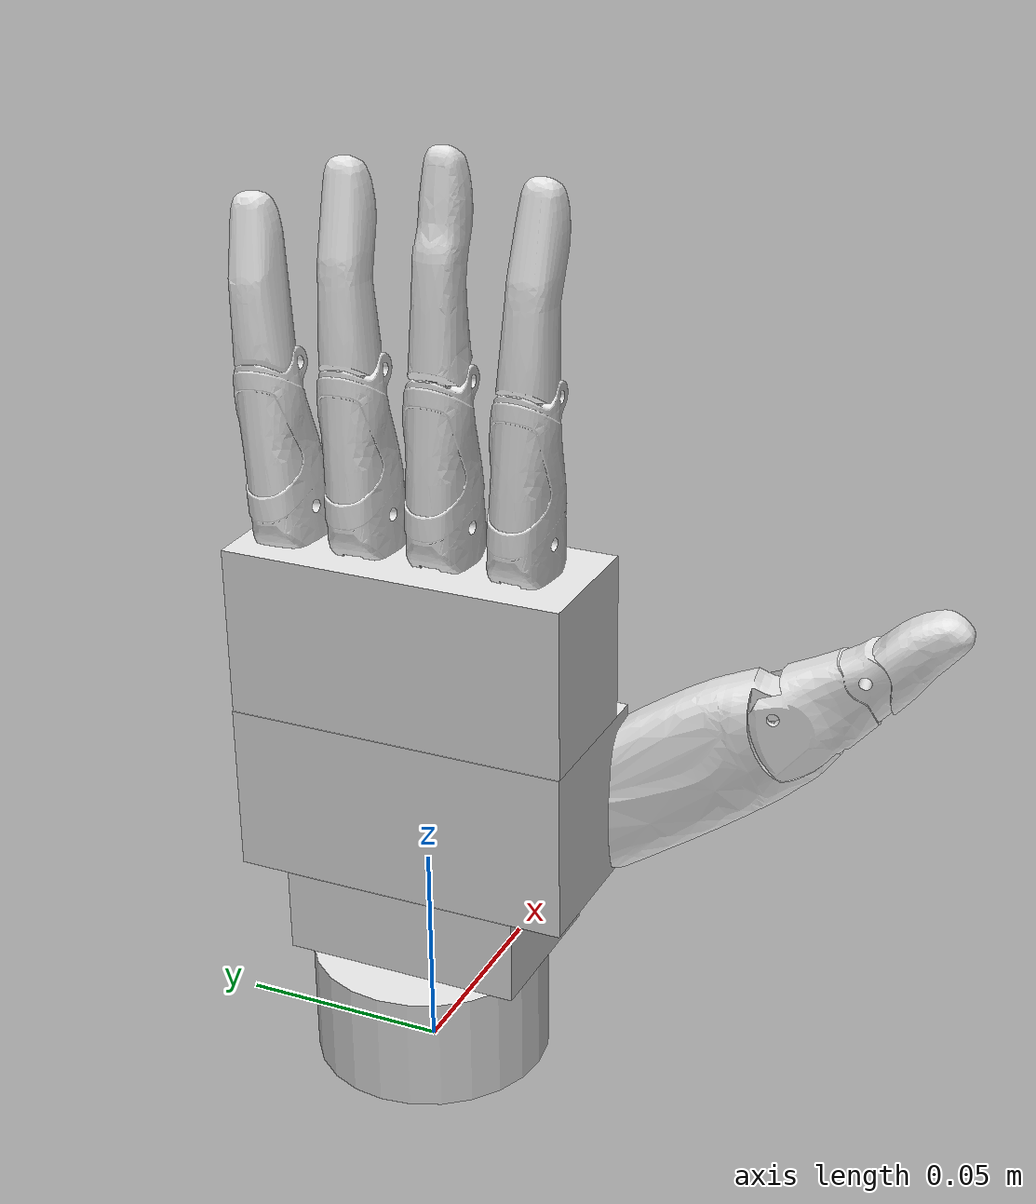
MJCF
<?xml version="1.0" ?>
<mujoco model="inspire_hand_left">
	<compiler meshdir="meshes/collision" angle="radian" autolimits="true" />
	<default>
		<default class="inspire_hand_left_visual">
			<geom contype="0" conaffinity="0"/>
		</default>
		<default class="inspire_hand_left_collision">
			<geom rgba="0.9 0.9 0.9 1.0"/>
		</default>
	</default>
	<asset>
		<mesh name="left_thumb_proximal_base" file="left_thumb_proximal_base.stl" scale="1.0 1.0 1.0"/>
		<mesh name="left_thumb_proximal" file="left_thumb_proximal.stl" scale="1.0 1.0 1.0"/>
		<mesh name="left_thumb_intermediate" file="left_thumb_intermediate.stl" scale="1.0 1.0 1.0"/>
		<mesh name="left_thumb_distal" file="left_thumb_distal.stl" scale="1.0 1.0 1.0"/>
		<mesh name="left_index_proximal" file="left_index_proximal.stl" scale="1.0 1.0 1.0"/>
		<mesh name="left_index_intermediate" file="left_index_intermediate.stl" scale="1.0 1.0 1.0"/>
		<mesh name="left_middle_intermediate" file="left_middle_intermediate.stl" scale="1.0 1.0 1.0"/>
		<mesh name="left_pinky_intermediate" file="left_pinky_intermediate.stl" scale="1.0 1.0 1.0"/>
	</asset>
	<worldbody>
		<body name="inspire_hand_left" pos="0.0 0.0 0.0" quat="1.0 0.0 0.0 0.0">
			<freejoint/>
			<body name="base" pos="0.0 0.0 0.0" quat="1.0 0.0 0.0 0.0">
				<inertial mass="0.14143000543117523" pos="-0.002526399912312627 -0.06604699790477753 -0.001959800021722913" quat="0.09772733598947525 0.7170524597167969 -0.06282567977905273 -0.6872685551643372" diaginertia="7.619507960043848e-05 8.411859744228423e-05 0.00012299131776671857"/>
				<body name="hand_base_link" pos="0.0 0.0 0.0" quat="9.381856784784759e-07 -9.381856784784759e-07 -0.7071067690849304 0.7071067690849304">
					<geom name="SM_hand_base_link_collision_0" type="cylinder" pos="0.0 -0.01360000018030405 0.0" quat="0.7071090340614319 0.7071045637130737 0.0 0.0" size="0.02800000086426735 0.013899999670684338 0.0" class="inspire_hand_left_collision"/>
					<geom name="SM_hand_base_link_collision_1" type="box" pos="-0.0031999999191612005 -0.03799999877810478 0.0" quat="1.0 0.0 0.0 0.0" size="0.01954999938607216 0.010099999606609344 0.028699999675154686" class="inspire_hand_left_collision"/>
					<geom name="SM_hand_base_link_collision_2" type="box" pos="-0.0031999999191612005 -0.0681999996304512 0.0" quat="1.0 0.0 0.0 0.0" size="0.01954999938607216 0.019999999552965164 0.040699999779462814" class="inspire_hand_left_collision"/>
					<geom name="SM_hand_base_link_collision_3" type="box" pos="0.0 -0.10809999704360962 0.0" quat="1.0 0.0 0.0 0.0" size="0.016100000590085983 0.019999999552965164 0.040699999779462814" class="inspire_hand_left_collision"/>
					<geom name="SM_hand_base_link_collision_4" type="box" pos="-0.0015999999595806003 -0.1340000033378601 -0.030899999663233757" quat="1.0 0.0 0.0 0.0" size="0.0062500000931322575 0.005549999885261059 0.004449999891221523" class="inspire_hand_left_collision"/>
					<geom name="SM_hand_base_link_collision_5" type="box" pos="-0.0015999999595806003 -0.1340000033378601 -0.011800000444054604" quat="1.0 0.0 0.0 0.0" size="0.0062500000931322575 0.005549999885261059 0.004449999891221523" class="inspire_hand_left_collision"/>
					<geom name="SM_hand_base_link_collision_6" type="box" pos="-0.0015999999595806003 -0.1340000033378601 0.007000000216066837" quat="1.0 0.0 0.0 0.0" size="0.0062500000931322575 0.005549999885261059 0.004449999891221523" class="inspire_hand_left_collision"/>
					<geom name="SM_hand_base_link_collision_7" type="box" pos="-0.0015999999595806003 -0.1340000033378601 0.026200000196695328" quat="1.0 0.0 0.0 0.0" size="0.0062500000931322575 0.005549999885261059 0.004449999891221523" class="inspire_hand_left_collision"/>
					<body name="index_proximal" pos="0.0002853299956768751 -0.13652999699115753 0.03226799890398979" quat="0.9998477101325989 -0.01745261438190937 1.8409575947661283e-24 8.498105667334897e-25">
						<inertial mass="0.004240300040692091" pos="0.0012259000213816762 -0.0119420001283288 -0.006000100169330835" quat="0.7193485498428345 -2.7051870347349904e-05 1.8907079720520414e-05 -0.694649338722229" diaginertia="2.1090872337481414e-07 6.628712867495778e-07 6.939799845895323e-07"/>
						<geom name="SM_index_proximal_collision_0" type="mesh" pos="0.0 0.0 0.0" quat="1.0 0.0 0.0 0.0" mesh="left_index_proximal" class="inspire_hand_left_collision"/>
						<joint name="index_proximal_joint" type="hinge" pos="5.421010862427522e-20 6.938893903907228e-18 -4.2075554220458793e-26" range="0.0 1.46999990940094" axis="0.0 0.0 -1.0"/>
						<body name="index_intermediate" pos="-0.00261380011215806 -0.03202600032091141 -0.0010000000474974513" quat="1.0 9.244463733058732e-33 -1.039160601322504e-22 -6.583179149284136e-24">
							<inertial mass="0.00456830020993948" pos="0.0019696999806910753 -0.019588999450206757 -0.004999999888241291" quat="-0.6601166725158691 -9.285805390391033e-06 9.442229384148959e-06 0.7511630654335022" diaginertia="8.472122203784238e-08 7.724647730356082e-07 7.817899927431426e-07"/>
							<geom name="SM_index_intermediate_collision_0" type="mesh" pos="0.0 0.0 0.0" quat="1.0 0.0 0.0 0.0" mesh="left_index_intermediate" class="inspire_hand_left_collision"/>
							<joint name="index_intermediate_joint" type="hinge" pos="-2.938735877055719e-39 -7.801500180554065e-18 -2.7243741481589783e-19" range="-0.04544999822974205 1.5600000619888306" axis="0.0 0.0 -1.0"/>
							<body name="index_tip" pos="-0.0007999999797903001 -0.04500000178813934 -0.004999999888241291" quat="1.0 9.244463733058732e-33 -1.039160601322504e-22 -6.583179149284136e-24">
							</body>
						</body>
					</body>
					<body name="middle_proximal" pos="0.0002853299956768751 -0.1370999962091446 0.01295000035315752" quat="1.0 8.271806125530277e-25 -6.0772272707285915e-31 3.1554436208840472e-30">
						<inertial mass="0.004240300040692091" pos="0.0012969999806955457 -0.011934000067412853 -0.006000100169330835" quat="0.7214158177375793 -2.875800601032097e-05 1.813349263102282e-05 -0.6925021409988403" diaginertia="2.1091464930123038e-07 6.628653181905975e-07 6.939699801478127e-07"/>
						<geom name="SM_middle_proximal_collision_0" type="mesh" pos="0.0 0.0 0.0" quat="1.0 0.0 0.0 0.0" mesh="left_index_proximal" class="inspire_hand_left_collision"/>
						<joint name="middle_proximal_joint" type="hinge" pos="5.421010862427522e-20 1.734723475976807e-18 9.736965619925347e-26" range="0.0 1.46999990940094" axis="0.0 0.0 -1.0"/>
						<body name="middle_intermediate" pos="-0.002422899939119816 -0.032040998339653015 -0.0010000000474974513" quat="1.0 8.271806125530277e-25 -6.0772272707285915e-31 3.1554436208840472e-30">
							<inertial mass="0.0050396001897752285" pos="0.0019209999591112137 -0.020795999094843864 -0.004999999888241291" quat="-0.6592898964881897 -5.518809120985679e-05 5.767871698481031e-05 0.7518888115882874" diaginertia="9.140141088437304e-08 9.732785883898032e-07 9.838399819273036e-07"/>
							<geom name="SM_middle_intermediate_collision_0" type="mesh" pos="0.0 0.0 0.0" quat="1.0 0.0 0.0 0.0" mesh="left_middle_intermediate" class="inspire_hand_left_collision"/>
							<joint name="middle_intermediate_joint" type="hinge" pos="4.337176785314604e-19 -8.673621515787098e-19 -1.3877786980633844e-17" range="-0.04544999822974205 1.5600000619888306" axis="0.0 0.0 -1.0"/>
							<body name="middle_tip" pos="-0.0010000000474974513 -0.04800000041723251 -0.004999999888241291" quat="1.0 8.271806125530277e-25 -6.0772272707285915e-31 3.1554436208840472e-30">
							</body>
						</body>
					</body>
					<body name="ring_proximal" pos="0.0002853299956768751 -0.13691000640392303 -0.0062871999107301235" quat="0.9996573328971863 0.02617700956761837 -2.7253564581423253e-24 7.601245759884602e-25">
						<inertial mass="0.004240300040692091" pos="0.0012969999806955457 -0.011934000067412853 -0.006000199820846319" quat="0.7214158177375793 -2.6212075681542046e-05 1.5668043488403782e-05 -0.6925021409988403" diaginertia="2.1091464930123038e-07 6.628653181905975e-07 6.939699801478127e-07"/>
						<geom name="SM_ring_proximal_collision_0" type="mesh" pos="0.0 0.0 0.0" quat="1.0 0.0 0.0 0.0" mesh="left_index_proximal" class="inspire_hand_left_collision"/>
						<joint name="ring_proximal_joint" type="hinge" pos="0.0 -8.673617379884035e-19 2.3240868403285377e-26" range="0.0 1.46999990940094" axis="0.0 0.0 -1.0"/>
						<body name="ring_intermediate" pos="-0.002422899939119816 -0.032040998339653015 -0.0010000000474974513" quat="1.0 0.0 -1.0899610348082025e-22 8.162126849572873e-26">
							<inertial mass="0.00456830020993948" pos="0.0021752999164164066 -0.01956699974834919 -0.004999999888241291" quat="-0.6640501618385315 -1.9659373720060103e-05 2.1428197214845568e-05 0.7476879954338074" diaginertia="8.472197521314229e-08 7.724480042270443e-07 7.817699838597036e-07"/>
							<geom name="SM_ring_intermediate_collision_0" type="mesh" pos="0.0 0.0 0.0" quat="1.0 0.0 0.0 0.0" mesh="left_index_intermediate" class="inspire_hand_left_collision"/>
							<joint name="ring_intermediate_joint" type="hinge" pos="-1.1047786193986395e-22 4.465819914178851e-19 4.166709584882328e-17" range="-0.04544999822974205 1.5600000619888306" axis="0.0 0.0 -1.0"/>
							<body name="ring_tip" pos="-0.0007999999797903001 -0.04500000178813934 -0.004999999888241291" quat="1.0 0.0 -1.0899610348082025e-22 8.162126849572873e-26">
							</body>
						</body>
					</body>
					<body name="pinky_proximal" pos="0.0002853299956768751 -0.1357100009918213 -0.025488000363111496" quat="0.9986295104026794 0.05233607813715935 -5.162623674711105e-24 4.840701963849668e-25">
						<inertial mass="0.004240300040692091" pos="0.0012969999806955457 -0.011934000067412853 -0.006000100169330835" quat="0.7214158177375793 -2.779311398626305e-05 1.683872687863186e-05 -0.6925021409988403" diaginertia="2.1091464930123038e-07 6.628653181905975e-07 6.939699801478127e-07"/>
						<geom name="SM_pinky_proximal_collision_0" type="mesh" pos="0.0 0.0 0.0" quat="1.0 0.0 0.0 0.0" mesh="left_index_proximal" class="inspire_hand_left_collision"/>
						<joint name="pinky_proximal_joint" type="hinge" pos="7.365191006353838e-23 -6.938894731087841e-18 -2.7755575615628914e-17" range="0.0 1.46999990940094" axis="0.0 0.0 -1.0"/>
						<body name="pinky_intermediate" pos="-0.002422899939119816 -0.032040998339653015 -0.0010000000474974513" quat="1.0 6.938893903907228e-18 1.0034541061795595e-22 2.900099453144354e-25">
							<inertial mass="0.0035995999351143837" pos="0.0024747999850660563 -0.016202999278903008 -0.005003099795430899" quat="-0.0033152850810438395 0.7450506687164307 0.6669934988021851 -0.0028730568010360003" diaginertia="6.565379351286538e-08 4.437228255937953e-07 4.486703915063117e-07"/>
							<geom name="SM_pinky_intermediate_collision_0" type="mesh" pos="0.0 0.0 0.0" quat="1.0 0.0 0.0 0.0" mesh="left_pinky_intermediate" class="inspire_hand_left_collision"/>
							<joint name="pinky_intermediate_joint" type="hinge" pos="-3.682595503176919e-23 5.880173650576879e-19 1.389242725029542e-17" range="-0.04544999822974205 1.5600000619888306" axis="0.0 0.0 -1.0"/>
							<body name="pinky_tip" pos="-0.0007999999797903001 -0.03700000047683716 -0.004999999888241291" quat="1.0 6.938893903907228e-18 1.0034541061795595e-22 2.900099453144354e-25">
							</body>
						</body>
					</body>
					<body name="thumb_proximal_base" pos="-0.01696000061929226 -0.06909999996423721 0.02044999971985817" quat="0.49999815225601196 0.5 -0.5 0.500001847743988">
						<inertial mass="0.0018869000487029552" pos="0.004881700035184622 0.0009381999843753874 -0.0072200000286102295" quat="0.6526864767074585 0.7102533578872681 0.0756545141339302 0.2526201903820038" diaginertia="4.941936637692379e-08 6.873204227986207e-08 8.660258998816062e-08"/>
						<geom name="SM_thumb_proximal_base_collision_0" type="mesh" pos="0.0 0.0 0.0" quat="1.0 0.0 0.0 0.0" mesh="left_thumb_proximal_base" class="inspire_hand_left_collision"/>
						<joint name="thumb_proximal_yaw_joint" type="hinge" pos="3.469446951953614e-18 3.469446951953614e-18 9.113525444566528e-24" range="0.0 1.3079999685287476" axis="0.0 0.0 1.0"/>
						<body name="thumb_proximal" pos="0.009986699558794498 0.009824199602007866 -0.008899999782443047" quat="-0.7045708894729614 0.7045734524726868 0.05981694534420967 -0.05981672555208206">
							<inertial mass="0.006607499904930592" pos="0.021932000294327736 -0.012784999795258045 -0.008038599975407124" quat="0.933698296546936 -0.0018248790875077248 0.0006946377689018846 -0.3580555021762848" diaginertia="8.645660045658587e-07 2.439328682157793e-06 2.786005325106089e-06"/>
							<geom name="SM_thumb_proximal_collision_0" type="mesh" pos="0.0 0.0 0.0" quat="1.0 0.0 0.0 0.0" mesh="left_thumb_proximal" class="inspire_hand_left_collision"/>
							<joint name="thumb_proximal_pitch_joint" type="hinge" pos="-1.7347251303380322e-18 -1.7347025896663401e-18 5.204177045375322e-18" range="0.0 0.6000000238418579" axis="0.0 0.0 -1.0"/>
							<body name="thumb_intermediate" pos="0.04407000169157982 -0.03455299884080887 -0.0007999999797903001" quat="1.0 -6.617444900424222e-24 -2.5099553452876955e-23 7.703719777548943e-34">
								<inertial mass="0.0037847000639885664" pos="0.009554400108754635 0.0016282000578939915 -0.007199699990451336" quat="0.9005143642425537 0.00011290622205706313 -5.981473077554256e-05 -0.4348262548446655" diaginertia="2.456612264722935e-07 4.4808876964452793e-07 4.6530999497917946e-07"/>
								<geom name="SM_thumb_intermediate_collision_0" type="mesh" pos="0.0 0.0 0.0" quat="1.0 0.0 0.0 0.0" mesh="left_thumb_intermediate" class="inspire_hand_left_collision"/>
								<joint name="thumb_intermediate_joint" type="hinge" pos="6.839578463661049e-18 4.878914325678139e-18 -1.1697731796735026e-18" range="0.0 0.800000011920929" axis="0.0 0.0 -1.0"/>
								<body name="thumb_distal" pos="0.02024799957871437 -0.010156000033020973 -0.0012000000569969416" quat="1.0 -6.617444900424222e-24 -2.5099553452876955e-23 7.703719777548943e-34">
									<inertial mass="0.0033440999686717987" pos="0.009288799948990345 -0.0049529001116752625 -0.006003300193697214" quat="0.9273728132247925 -0.00246614683419466 0.00030418275855481625 -0.3741303086280823" diaginertia="8.159298658938496e-08 1.9524669880865986e-07 2.0026031677389255e-07"/>
									<geom name="SM_thumb_distal_collision_0" type="mesh" pos="0.0 0.0 0.0" quat="1.0 0.0 0.0 0.0" mesh="left_thumb_distal" class="inspire_hand_left_collision"/>
									<joint name="thumb_distal_joint" type="hinge" pos="1.2464620868800289e-17 7.155743437391067e-18 -1.9730944292019282e-17" range="0.0 0.4000000059604645" axis="0.0 0.0 -1.0"/>
									<body name="thumb_tip" pos="0.02019999921321869 -0.014000000432133675 -0.006000000052154064" quat="1.0 -6.617444900424222e-24 -2.5099553452876955e-23 7.703719777548943e-34">
									</body>
								</body>
							</body>
						</body>
					</body>
				</body>
			</body>
		</body>
	</worldbody>
	<equality>
		<joint name="index_intermediate_joint_index_proximal_joint" joint1="index_intermediate_joint" joint2="index_proximal_joint" polycoef="-0.04544999822974205 1.0639899969100952 0.0 0.0 0.0"/>
		<joint name="middle_intermediate_joint_middle_proximal_joint" joint1="middle_intermediate_joint" joint2="middle_proximal_joint" polycoef="-0.04544999822974205 1.0639899969100952 0.0 0.0 0.0"/>
		<joint name="ring_intermediate_joint_ring_proximal_joint" joint1="ring_intermediate_joint" joint2="ring_proximal_joint" polycoef="-0.04544999822974205 1.0639899969100952 0.0 0.0 0.0"/>
		<joint name="pinky_intermediate_joint_pinky_proximal_joint" joint1="pinky_intermediate_joint" joint2="pinky_proximal_joint" polycoef="-0.04544999822974205 1.0639899969100952 0.0 0.0 0.0"/>
		<joint name="thumb_intermediate_joint_thumb_proximal_pitch_joint" joint1="thumb_intermediate_joint" joint2="thumb_proximal_pitch_joint" polycoef="0.0 1.3339999914169312 0.0 0.0 0.0"/>
		<joint name="thumb_distal_joint_thumb_proximal_pitch_joint" joint1="thumb_distal_joint" joint2="thumb_proximal_pitch_joint" polycoef="0.0 0.6669999957084656 0.0 0.0 0.0"/>
	</equality>
	<contact>
		<exclude name="hand_base_link_thumb_proximal_base" body1="hand_base_link" body2="thumb_proximal_base"/>
		<exclude name="hand_base_link_thumb_proximal" body1="hand_base_link" body2="thumb_proximal"/>
		<exclude name="hand_base_link_index_proximal" body1="hand_base_link" body2="index_proximal"/>
		<exclude name="hand_base_link_middle_proximal" body1="hand_base_link" body2="middle_proximal"/>
		<exclude name="hand_base_link_ring_proximal" body1="hand_base_link" body2="ring_proximal"/>
		<exclude name="hand_base_link_pinky_proximal" body1="hand_base_link" body2="pinky_proximal"/>
	</contact>
</mujoco>
